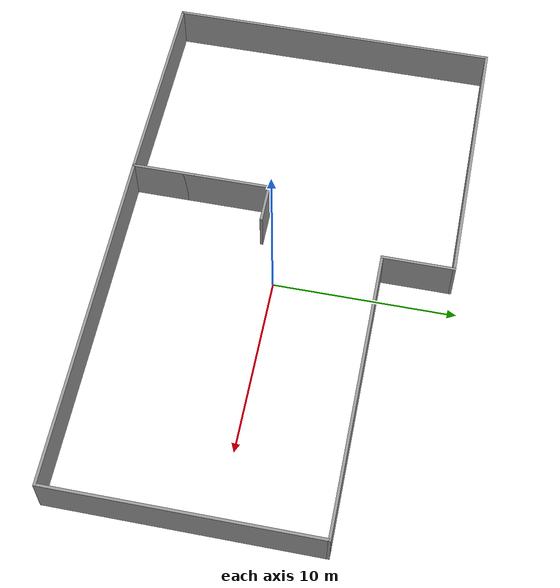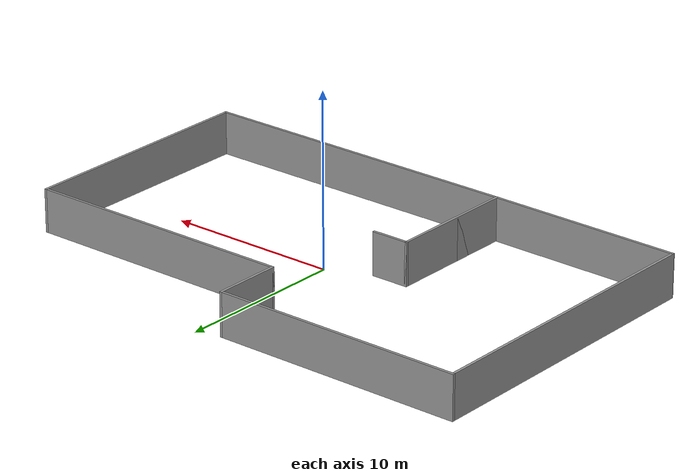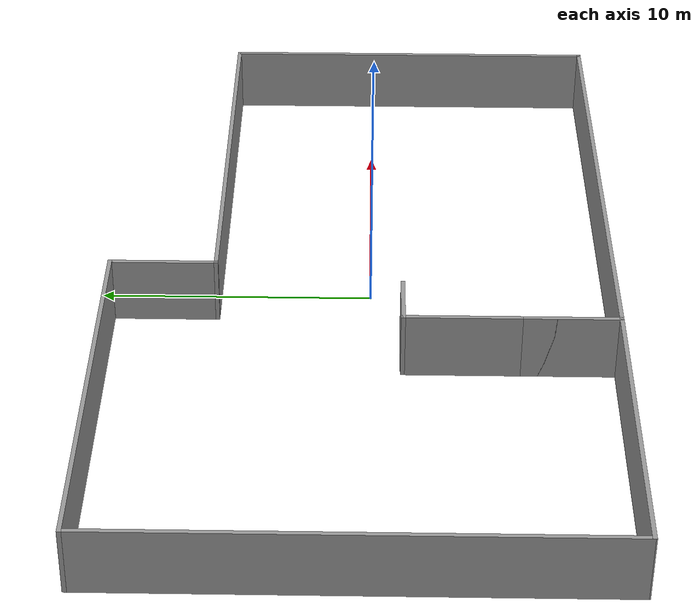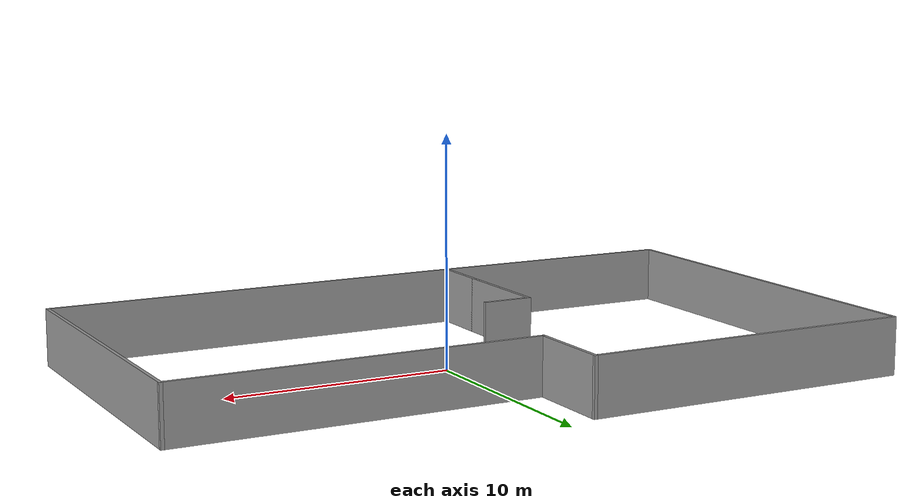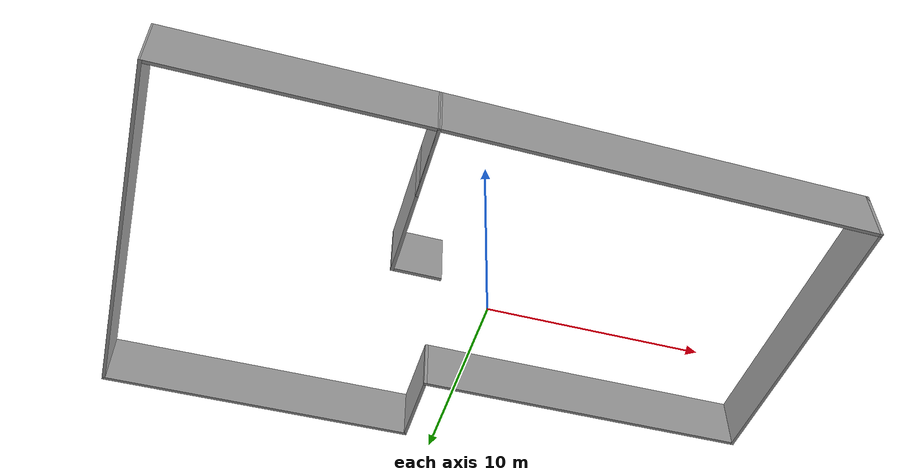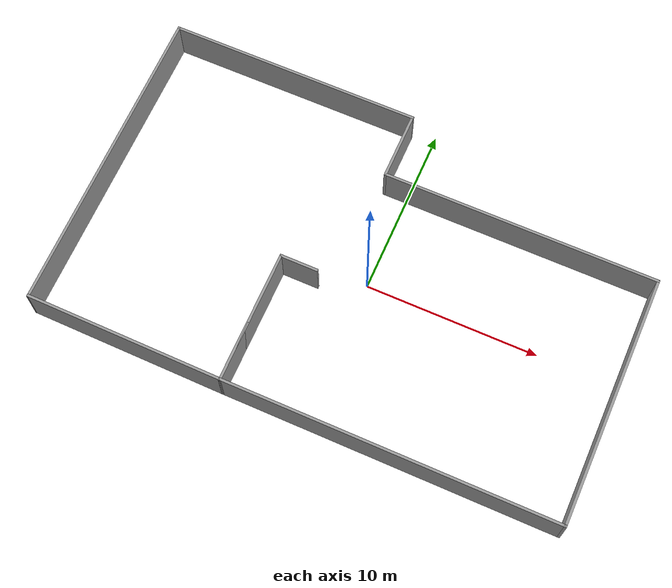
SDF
<?xml version='1.0'?>
<sdf version='1.7'>
  <model name='building'>
    <pose>-0.735219 0.379673 0 0 -0 0</pose>
    <link name='Wall_1'>
      <collision name='Wall_1_Collision'>
        <geometry>
          <box>
            <size>2.25 0.15 2.5</size>
          </box>
        </geometry>
        <pose>0 0 1.25 0 -0 0</pose>
      </collision>
      <visual name='Wall_1_Visual'>
        <pose>0 0 1.25 0 -0 0</pose>
        <geometry>
          <box>
            <size>2.25 0.15 2.5</size>
          </box>
        </geometry>
        <material>
          <script>
            <uri>file://media/materials/scripts/gazebo.material</uri>
            <name>Gazebo/Grey</name>
          </script>
          <ambient>1 1 1 1</ambient>
        </material>
        <meta>
          <layer>0</layer>
        </meta>
      </visual>
      <pose>-2.82478 -1.49967 0 0 -0 3.14159</pose>
    </link>
    <link name='Wall_10'>
      <collision name='Wall_10_Collision'>
        <geometry>
          <box>
            <size>3.5 0.15 2.5</size>
          </box>
        </geometry>
        <pose>0 0 1.25 0 -0 0</pose>
      </collision>
      <visual name='Wall_10_Visual'>
        <pose>0 0 1.25 0 -0 0</pose>
        <geometry>
          <box>
            <size>3.5 0.15 2.5</size>
          </box>
        </geometry>
        <material>
          <script>
            <uri>file://media/materials/scripts/gazebo.material</uri>
            <name>Gazebo/Grey</name>
          </script>
          <ambient>1 1 1 1</ambient>
        </material>
        <meta>
          <layer>0</layer>
        </meta>
      </visual>
      <pose>-3.87478 -7.42467 0 0 -0 1.5708</pose>
    </link>
    <link name='Wall_2'>
      <collision name='Wall_2_Collision'>
        <geometry>
          <box>
            <size>7.75 0.15 2.5</size>
          </box>
        </geometry>
        <pose>0 0 1.25 0 -0 0</pose>
      </collision>
      <visual name='Wall_2_Visual'>
        <pose>0 0 1.25 0 -0 0</pose>
        <geometry>
          <box>
            <size>7.75 0.15 2.5</size>
          </box>
        </geometry>
        <material>
          <script>
            <uri>file://media/materials/scripts/gazebo.material</uri>
            <name>Gazebo/Grey</name>
          </script>
          <ambient>1 1 1 1</ambient>
        </material>
        <meta>
          <layer>0</layer>
        </meta>
      </visual>
      <pose>-3.87478 -5.29967 0 0 -0 -1.5708</pose>
    </link>
    <link name='Wall_3'>
      <collision name='Wall_3_Collision'>
        <geometry>
          <box>
            <size>19.25 0.15 2.5</size>
          </box>
        </geometry>
        <pose>0 0 1.25 0 -0 0</pose>
      </collision>
      <visual name='Wall_3_Visual'>
        <pose>0 0 1.25 0 -0 0</pose>
        <geometry>
          <box>
            <size>19.25 0.15 2.5</size>
          </box>
        </geometry>
        <material>
          <script>
            <uri>file://media/materials/scripts/gazebo.material</uri>
            <name>Gazebo/Grey</name>
          </script>
          <ambient>1 1 1 1</ambient>
        </material>
        <meta>
          <layer>0</layer>
        </meta>
      </visual>
      <pose>5.67522 -9.09967 0 0 -0 0</pose>
    </link>
    <link name='Wall_4'>
      <collision name='Wall_4_Collision'>
        <geometry>
          <box>
            <size>14.5 0.15 2.5</size>
          </box>
        </geometry>
        <pose>0 0 1.25 0 -0 0</pose>
      </collision>
      <visual name='Wall_4_Visual'>
        <pose>0 0 1.25 0 -0 0</pose>
        <geometry>
          <box>
            <size>14.5 0.15 2.5</size>
          </box>
        </geometry>
        <material>
          <script>
            <uri>file://media/materials/scripts/gazebo.material</uri>
            <name>Gazebo/Grey</name>
          </script>
          <ambient>1 1 1 1</ambient>
        </material>
        <meta>
          <layer>0</layer>
        </meta>
      </visual>
      <pose>15.2252 -1.92467 0 0 -0 1.5708</pose>
    </link>
    <link name='Wall_5'>
      <collision name='Wall_5_Collision'>
        <geometry>
          <box>
            <size>16 0.15 2.5</size>
          </box>
        </geometry>
        <pose>0 0 1.25 0 -0 0</pose>
      </collision>
      <visual name='Wall_5_Visual'>
        <pose>0 0 1.25 0 -0 0</pose>
        <geometry>
          <box>
            <size>16 0.15 2.5</size>
          </box>
        </geometry>
        <material>
          <script>
            <uri>file://media/materials/scripts/gazebo.material</uri>
            <name>Gazebo/Grey</name>
          </script>
          <ambient>1 1 1 1</ambient>
        </material>
        <meta>
          <layer>0</layer>
        </meta>
      </visual>
      <pose>7.30022 5.25033 0 0 -0 3.14159</pose>
    </link>
    <link name='Wall_6'>
      <collision name='Wall_6_Collision'>
        <geometry>
          <box>
            <size>4 0.15 2.5</size>
          </box>
        </geometry>
        <pose>0 0 1.25 0 -0 0</pose>
      </collision>
      <visual name='Wall_6_Visual'>
        <pose>0 0 1.25 0 -0 0</pose>
        <geometry>
          <box>
            <size>4 0.15 2.5</size>
          </box>
        </geometry>
        <material>
          <script>
            <uri>file://media/materials/scripts/gazebo.material</uri>
            <name>Gazebo/Grey</name>
          </script>
          <ambient>1 1 1 1</ambient>
        </material>
        <meta>
          <layer>0</layer>
        </meta>
      </visual>
      <pose>-0.624781 7.17533 0 0 -0 1.5708</pose>
    </link>
    <link name='Wall_7'>
      <collision name='Wall_7_Collision'>
        <geometry>
          <box>
            <size>14.75 0.15 2.5</size>
          </box>
        </geometry>
        <pose>0 0 1.25 0 -0 0</pose>
      </collision>
      <visual name='Wall_7_Visual'>
        <pose>0 0 1.25 0 -0 0</pose>
        <geometry>
          <box>
            <size>14.75 0.15 2.5</size>
          </box>
        </geometry>
        <material>
          <script>
            <uri>file://media/materials/scripts/gazebo.material</uri>
            <name>Gazebo/Grey</name>
          </script>
          <ambient>1 1 1 1</ambient>
        </material>
        <meta>
          <layer>0</layer>
        </meta>
      </visual>
      <pose>-7.92478 9.10033 0 0 -0 3.14159</pose>
    </link>
    <link name='Wall_8'>
      <collision name='Wall_8_Collision'>
        <geometry>
          <box>
            <size>18.25 0.15 2.5</size>
          </box>
        </geometry>
        <pose>0 0 1.25 0 -0 0</pose>
      </collision>
      <visual name='Wall_8_Visual'>
        <pose>0 0 1.25 0 -0 0</pose>
        <geometry>
          <box>
            <size>18.25 0.15 2.5</size>
          </box>
        </geometry>
        <material>
          <script>
            <uri>file://media/materials/scripts/gazebo.material</uri>
            <name>Gazebo/Grey</name>
          </script>
          <ambient>1 1 1 1</ambient>
        </material>
        <meta>
          <layer>0</layer>
        </meta>
      </visual>
      <pose>-15.2248 0.050327 0 0 -0 -1.5708</pose>
    </link>
    <link name='Wall_9'>
      <collision name='Wall_9_Collision'>
        <geometry>
          <box>
            <size>11.5 0.15 2.5</size>
          </box>
        </geometry>
        <pose>0 0 1.25 0 -0 0</pose>
      </collision>
      <visual name='Wall_9_Visual'>
        <pose>0 0 1.25 0 -0 0</pose>
        <geometry>
          <box>
            <size>11.5 0.15 2.5</size>
          </box>
        </geometry>
        <material>
          <script>
            <uri>file://media/materials/scripts/gazebo.material</uri>
            <name>Gazebo/Grey</name>
          </script>
          <ambient>1 1 1 1</ambient>
        </material>
        <meta>
          <layer>0</layer>
        </meta>
      </visual>
      <pose>-9.54978 -9.04967 0 0 -0 -0.00881</pose>
    </link>
    <static>1</static>
  </model>
</sdf>
